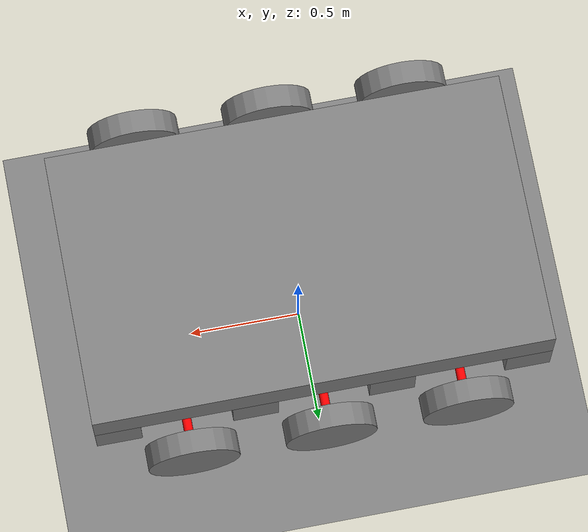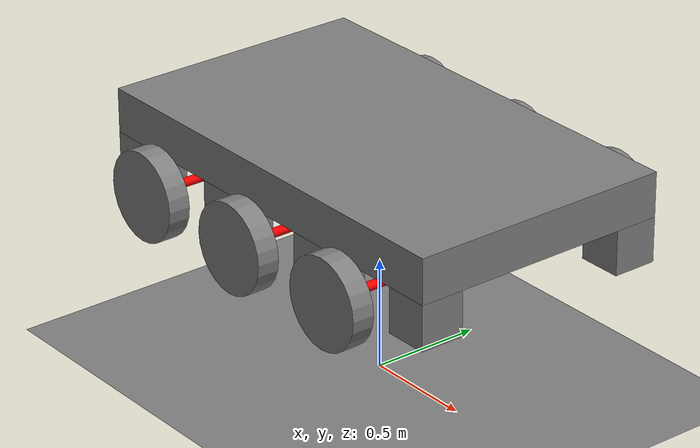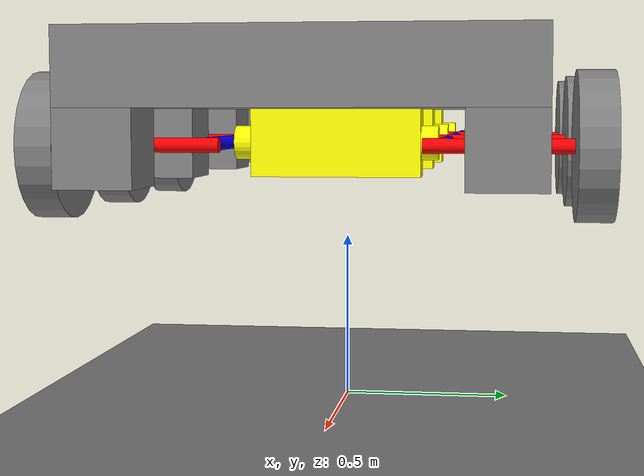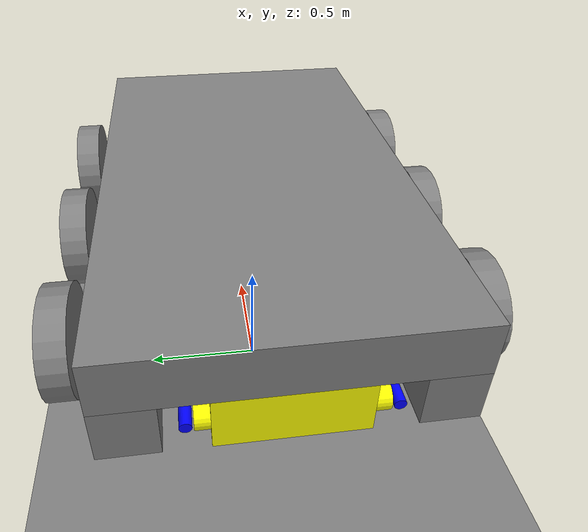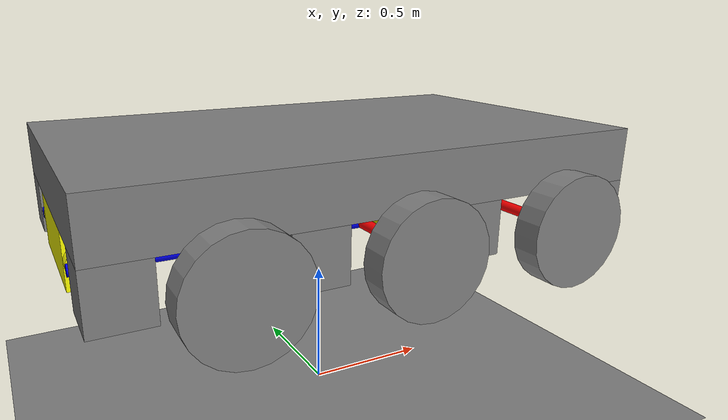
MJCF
<?xml version='1.0' encoding='UTF-8'?>
<mujoco>

	<option timestep="1e-4"/>
	<option gravity="0 0 -9.8"/>

    <worldbody>

        <!--Polygon-->
        <body name="floor" pos="0 0 0">
            <geom type="plane" size="10 10 0.1"/>
        </body>
        <!--Rover starts here-->
        <!--Base body-->
        <body pos = "0 0 1">
            <joint name = "cart" type = "free"/>
            <geom type = "box" size = "1 0.6 0.1"/>
            <geom type = "box" size = "0.1 0.1 0.1" pos = "0.9 0.5 -0.2"/>
            <geom type = "box" size = "0.1 0.1 0.1" pos = "0.3 0.5 -0.2"/>
            <geom type = "box" size = "0.1 0.1 0.1" pos = "-0.3 0.5 -0.2"/>
            <geom type = "box" size = "0.1 0.1 0.1" pos = "-0.9 0.5 -0.2"/>
            <geom type = "box" size = "0.1 0.1 0.1" pos = "0.9 -0.5 -0.2"/>
            <geom type = "box" size = "0.1 0.1 0.1" pos = "0.3 -0.5 -0.2"/>
            <geom type = "box" size = "0.1 0.1 0.1" pos = "-0.3 -0.5 -0.2"/>
            <geom type = "box" size = "0.1 0.1 0.1" pos = "-0.9 -0.5 -0.2"/>

            <!--First Pair-->

            <body pos = "0.25 0 -0.2">

                <geom type = "box" size = "0.05 0.25 0.1" rgba = "1 1 0 1"/>
                <body pos = "0 0.275 0">
                    <geom type = "cylinder" size = "0.05 0.025" euler = "90 0 0" rgba = "1 1 0 1"/>
                    <body pos = "0.15 0.05 0">
                        <joint type = "hinge" axis = "1 0 0" stiffness="10000" damping="10"/>
                        <geom type = "cylinder" euler = "0 90 0" size = "0.02 0.2" rgba = "0 0 1 1"/>
                        <body pos = "0.2 0.15 0">
                            <joint type = "hinge" axis = "0 1 0"/>
                            <geom type = "cylinder" size = "0.02 0.2" euler = "90 0 0" rgba = "1 0 0 1"/>
                            <body pos = "0 0.25 0">
                                <joint  name = "wheelL1" type = "hinge" axis = "0 1 0"/>
                                <geom type = "cylinder" size = "0.2 0.05" euler = "90 0 0"/>
                            </body>
                        </body>
                    </body>
                </body>
                <body pos = "0 -0.275 0">
                    <geom type = "cylinder" size = "0.05 0.025" euler = "90 0 0" rgba = "1 1 0 1"/>
                    <body pos = "0.15 -0.05 0">
                        <joint type = "hinge" axis = "1 0 0" stiffness="10000" damping="10"/>
                        <geom type = "cylinder" euler = "0 90 0" size = "0.02 0.2" rgba = "0 0 1 1"/>
                        <body pos = "0.2 -0.15 0">
                            <joint type = "hinge" axis = "0 1 0"/>
                            <geom type = "cylinder" size = "0.02 0.2" euler = "90 0 0" rgba = "1 0 0 1"/>
                            <body pos = "0 -0.25 0">
                                <joint  name = "wheelR1" type = "hinge" axis = "0 1 0"/>
                                <geom type = "cylinder" size = "0.2 0.05" euler = "90 0 0"/>
                            </body>
                        </body>
                    </body>
                </body>
            </body>

            <!--Second Pair-->

            <body pos = "-0.35 0 -0.2">

                <geom type = "box" size = "0.05 0.25 0.1" rgba = "1 1 0 1"/>
                <body pos = "0 0.275 0">
                    <geom type = "cylinder" size = "0.05 0.025" euler = "90 0 0" rgba = "1 1 0 1"/>
                    <body pos = "0.15 0.05 0">
                        <joint type = "hinge" axis = "1 0 0" stiffness="10000" damping="10"/>
                        <geom type = "cylinder" euler = "0 90 0" size = "0.02 0.2" rgba = "0 0 1 1"/>
                        <body pos = "0.2 0.15 0">
                            <joint type = "hinge" axis = "0 1 0"/>
                            <geom type = "cylinder" size = "0.02 0.2" euler = "90 0 0" rgba = "1 0 0 1"/>
                            <body pos = "0 0.25 0">
                                <joint  name = "wheelL2" type = "hinge" axis = "0 1 0"/>
                                <geom type = "cylinder" size = "0.2 0.05" euler = "90 0 0"/>
                            </body>
                        </body>
                    </body>
                </body>
                <body pos = "0 -0.275 0">
                    <geom type = "cylinder" size = "0.05 0.025" euler = "90 0 0" rgba = "1 1 0 1"/>
                    <body pos = "0.15 -0.05 0">
                        <joint type = "hinge" axis = "1 0 0" stiffness="10000" damping="10"/>
                        <geom type = "cylinder" euler = "0 90 0" size = "0.02 0.2" rgba = "0 0 1 1"/>
                        <body pos = "0.2 -0.15 0">
                            <joint type = "hinge" axis = "0 1 0"/>
                            <geom type = "cylinder" size = "0.02 0.2" euler = "90 0 0" rgba = "1 0 0 1"/>
                            <body pos = "0 -0.25 0">
                                <joint  name = "wheelR2" type = "hinge" axis = "0 1 0"/>
                                <geom type = "cylinder" size = "0.2 0.05" euler = "90 0 0"/>
                            </body>
                        </body>
                    </body>
                </body>
            </body>

            <!--Third Pair-->

            <body pos = "-0.95 0 -0.2">

                <geom type = "box" size = "0.05 0.25 0.1" rgba = "1 1 0 1"/>
                <body pos = "0 0.275 0">
                    <geom type = "cylinder" size = "0.05 0.025" euler = "90 0 0" rgba = "1 1 0 1"/>
                    <body pos = "0.15 0.05 0">
                        <joint type = "hinge" axis = "1 0 0" stiffness="10000" damping="10"/>
                        <geom type = "cylinder" euler = "0 90 0" size = "0.02 0.2" rgba = "0 0 1 1"/>
                        <body pos = "0.2 0.15 0">
                            <joint type = "hinge" axis = "0 1 0"/>
                            <geom type = "cylinder" size = "0.02 0.2" euler = "90 0 0" rgba = "1 0 0 1"/>
                            <body pos = "0 0.25 0">
                                <joint  name = "wheelL3" type = "hinge" axis = "0 1 0"/>
                                <geom type = "cylinder" size = "0.2 0.05" euler = "90 0 0"/>
                            </body>
                        </body>
                    </body>
                </body>
                <body pos = "0 -0.275 0">
                    <geom type = "cylinder" size = "0.05 0.025" euler = "90 0 0" rgba = "1 1 0 1"/>
                    <body pos = "0.15 -0.05 0">
                        <joint type = "hinge" axis = "1 0 0" stiffness="10000" damping="10"/>
                        <geom type = "cylinder" euler = "0 90 0" size = "0.02 0.2" rgba = "0 0 1 1"/>
                        <body pos = "0.2 -0.15 0">
                            <joint type = "hinge" axis = "0 1 0"/>
                            <geom type = "cylinder" size = "0.02 0.2" euler = "90 0 0" rgba = "1 0 0 1"/>
                            <body pos = "0 -0.25 0">
                                <joint  name = "wheelR3" type = "hinge" axis = "0 1 0"/>
                                <geom type = "cylinder" size = "0.2 0.05" euler = "90 0 0"/>
                            </body>
                        </body>
                    </body>
                </body>
            </body>

        </body>
    </worldbody>

    <actuator>
        <motor name="firstMotor" joint="wheelL1" ctrllimited="true" ctrlrange="-100 100" gear="20"/>
        <motor name="secondMotor" joint="wheelR1" ctrllimited="true" ctrlrange="-100 100" gear="20"/>
        <motor name="thirdMotor" joint="wheelL2" ctrllimited="true" ctrlrange="-100 100" gear="20"/>
        <motor name="fourthMotor" joint="wheelR2" ctrllimited="true" ctrlrange="-100 100" gear="20"/>
        <motor name="fifthMotor" joint="wheelL3" ctrllimited="true" ctrlrange="-100 100" gear="20"/>
        <motor name="sixthMotor" joint="wheelR3" ctrllimited="true" ctrlrange="-100 100" gear="20"/>
    </actuator>

</mujoco>
